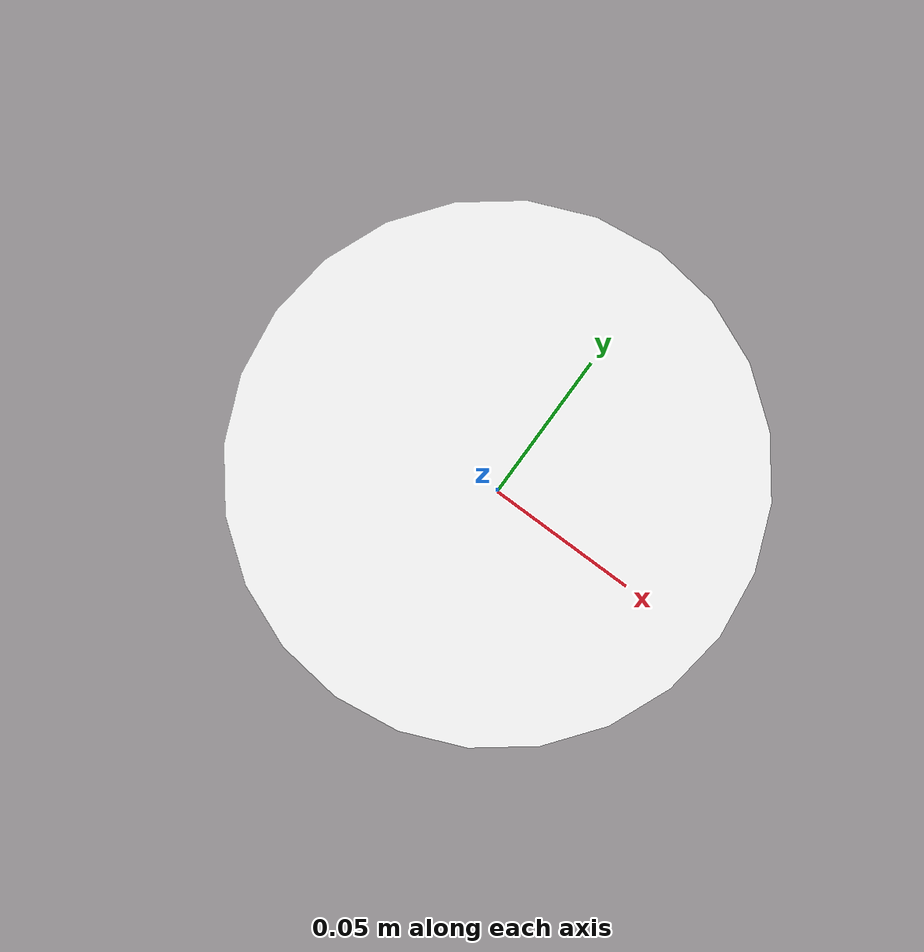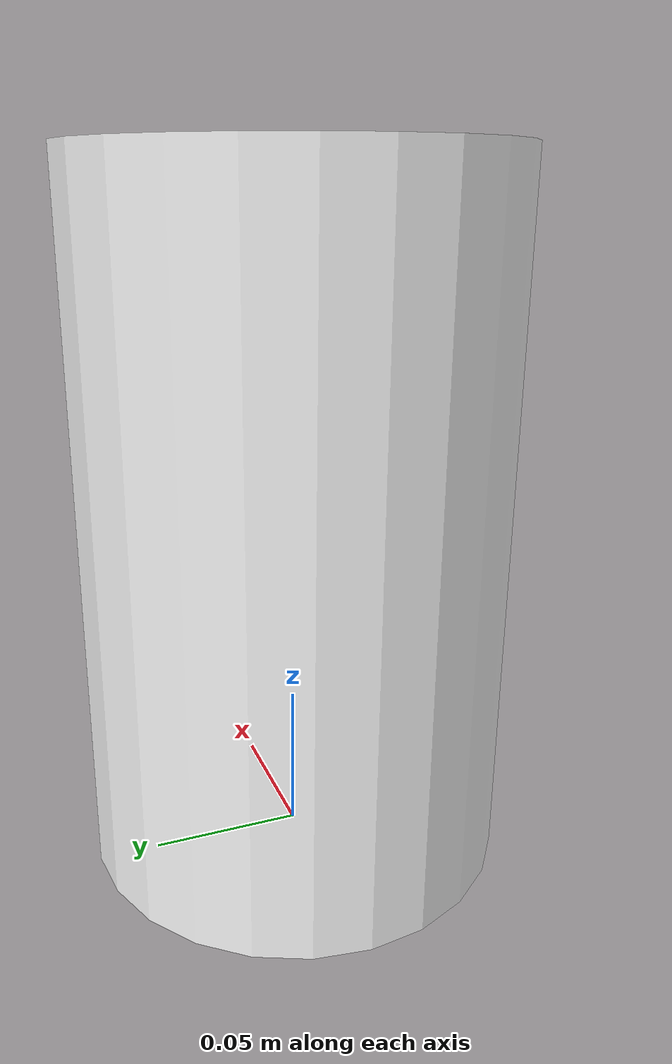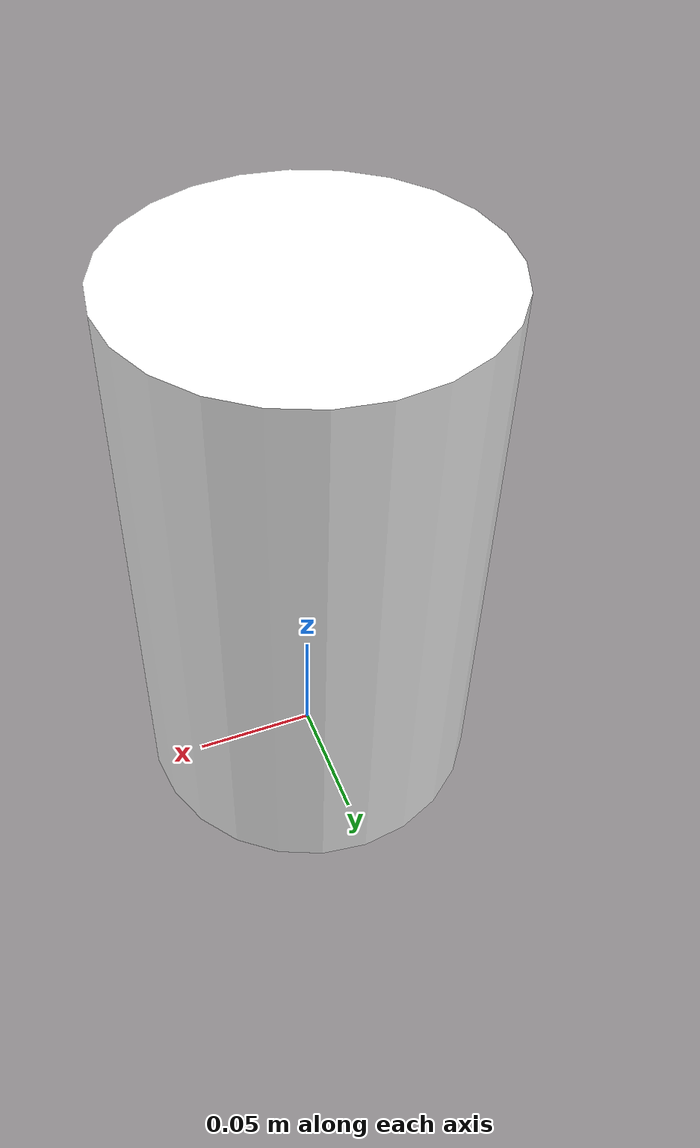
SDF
<?xml version="1.0" ?>
<sdf version="1.5">
  <model name="my_coke_can">
    <link name="link">
      <inertial>
        <pose>-0.01 -0.012 0.15 0 0 0</pose>
        <mass>0.390</mass>
        <inertia>
          <ixx>0.00058</ixx>
          <ixy>0</ixy>
          <ixz>0</ixz>
          <iyy>0.00058</iyy>
          <iyz>0</iyz>
          <izz>0.00019</izz>
        </inertia>
      </inertial>
      <collision name="collision">
        <pose>0 0 0.115 0 0 0</pose>
        <geometry>
          <cylinder>
            <radius>.07</radius>
            <length>.23</length>
          </cylinder>
        </geometry>
        <surface>
          <friction>
            <ode>
              <mu>1.0</mu>
              <mu2>1.0</mu2>
            </ode>
          </friction>
          <contact>
            <ode>
              <kp>10000000.0</kp>
              <kd>1.0</kd>
              <min_depth>0.001</min_depth>
              <max_vel>0.1</max_vel>
            </ode>
          </contact>
        </surface>
      </collision>
      <visual name="visual">
        <pose>0 0 0.115 0 0 0</pose>
        <geometry>
          <cylinder>
            <radius>.07</radius>
            <length>.23</length>
          </cylinder>
        </geometry>
	<material>
          <script>
            <name>MyCokeCan/can</name>
	    <uri>model://my_coke_can/materials/scripts</uri>
            <uri>model://my_coke_can/materials/textures</uri>
          </script>
          <ambient>1 1 1 1</ambient>
          <diffuse>1 1 1 1</diffuse>
          <specular>0.01 0.01 0.01 1</specular>
          <emissive>1 1 1 1</emissive>
        </material>
      </visual>
    </link>
  </model>
</sdf>
